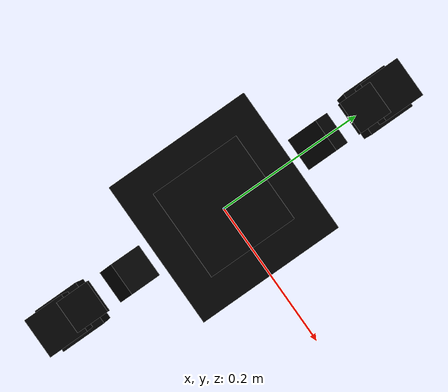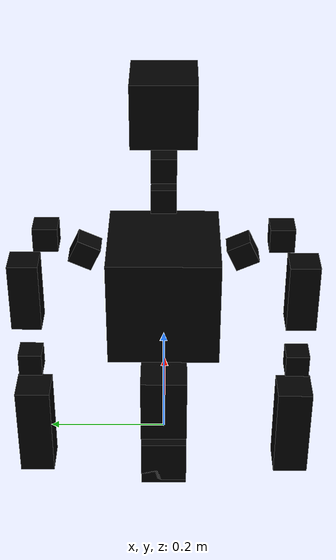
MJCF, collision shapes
<mujoco model="GR1T1">
    <compiler angle="radian" autolimits="true"/>
    <default>
    <motor ctrlrange="-1 1" ctrllimited="true"/>
        <default class="body">
            <geom type="box" condim="1" friction="1.0 0.05 0.05" solimp=".9 .99 .003" solref=".015 1"/>
            <joint type="hinge" armature=".007" limited="true" solimplimit="0 .99 .01"/>
            <site size="10" group="3"/>
        </default>
  </default>
  <asset>
    <texture type="skybox" builtin="gradient" rgb1=".3 .5 .7" rgb2="0 0 0" width="32" height="512"/>
    <texture name="body" type="cube" builtin="flat" mark="cross" width="128" height="128" rgb1="0.8 0.6 0.4" rgb2="0.8 0.6 0.4" markrgb="1 1 1" random="0.01"/>
    <material name="body" texture="body" texuniform="true" rgba="0.8 0.6 .4 1"/>
    <texture name="grid" type="2d" builtin="checker" width="512" height="512" rgb1=".1 .2 .3" rgb2=".2 .3 .4"/>
    <material name="grid" texture="grid" texrepeat="1 1" texuniform="true" reflectance="0.02"/>

    <!-- Define mesh model files -->
    <mesh name="base" file="./meshes/base.STL"/>
    <mesh name="l_thigh_roll" file="./meshes/l_thigh_roll.STL"/>
    <mesh name="l_thigh_yaw" file="./meshes/l_thigh_yaw.STL"/>
    <mesh name="l_thigh_pitch" file="./meshes/l_thigh_pitch.STL"/>
    <mesh name="l_shank_pitch" file="./meshes/l_shank_pitch.STL"/>
    <mesh name="l_foot_pitch" file="./meshes/l_foot_pitch.STL"/>
    <mesh name="l_foot_roll" file="./meshes/l_foot_roll.STL"/>
    <mesh name="r_thigh_roll" file="./meshes/r_thigh_roll.STL"/>
    <mesh name="r_thigh_yaw" file="./meshes/r_thigh_yaw.STL"/>
    <mesh name="r_thigh_pitch" file="./meshes/r_thigh_pitch.STL"/>
    <mesh name="r_shank_pitch" file="./meshes/r_shank_pitch.STL"/>
    <mesh name="r_foot_pitch" file="./meshes/r_foot_pitch.STL"/>
    <mesh name="r_foot_roll" file="./meshes/r_foot_roll.STL"/>
    <mesh name="waist_yaw" file="./meshes/waist_yaw.STL"/>
    <mesh name="waist_pitch" file="./meshes/waist_pitch.STL"/>
    <mesh name="waist_roll" file="./meshes/waist_roll.STL"/>
    <mesh name="head_yaw" file="./meshes/head_yaw.STL"/>
    <mesh name="head_roll" file="./meshes/head_roll.STL"/>
    <mesh name="head_pitch" file="./meshes/head_pitch.STL"/>
    <mesh name="l_upper_arm_pitch" file="./meshes/l_upper_arm_pitch.STL"/>
    <mesh name="l_upper_arm_roll" file="./meshes/l_upper_arm_roll.STL"/>
    <mesh name="l_upper_arm_yaw" file="./meshes/l_upper_arm_yaw.STL"/>
    <mesh name="l_lower_arm_pitch" file="./meshes/l_lower_arm_pitch.STL"/>
    <mesh name="l_hand_yaw" file="./meshes/l_hand_yaw.STL"/>
    <mesh name="l_hand_roll" file="./meshes/l_hand_roll.STL"/>
    <mesh name="l_hand_pitch" file="./meshes/l_hand_pitch.STL"/>
    <mesh name="r_upper_arm_pitch" file="./meshes/r_upper_arm_pitch.STL"/>
    <mesh name="r_upper_arm_roll" file="./meshes/r_upper_arm_roll.STL"/>
    <mesh name="r_upper_arm_yaw" file="./meshes/r_upper_arm_yaw.STL"/>
    <mesh name="r_lower_arm_pitch" file="./meshes/r_lower_arm_pitch.STL"/>
    <mesh name="r_hand_yaw" file="./meshes/r_hand_yaw.STL"/>
    <mesh name="r_hand_roll" file="./meshes/r_hand_roll.STL"/>
    <mesh name="r_hand_pitch" file="./meshes/r_hand_pitch.STL"/>
    <!-- End of mesh model files -->
  </asset>
  <worldbody>
    <!-- Base -->

    <body name="base">
        <inertial pos="-0.0508888 0.000109183 -0.0455794" quat="0.706855 0.707166 0.0123661 -0.0109307" mass="6.45117" diaginertia="0.0149302 0.0127972 0.00640923"/>
        <!-- Base mesh -->
        <geom type="mesh" contype="0" conaffinity="0" group="1" density="0" rgba="0 0 0 1" mesh="base"/>
        <geom size="0.04 0.04 0.04" pos="0 0 -0.06" type="box" rgba="0 0 0 1"/>
        <!-- Torso center of mass -->
        <body name="torso_link">
            <body name="base_com" />
        </body>

        <!-- Torso -->

        <!-- Waist yaw -->
        <body name="waist_yaw" pos="0 0 0.0065">
            <site name="waist" pos="0 0 0" size="0.06 0.06 0.06" rgba="1 0 0 0" type="sphere" group="1"/>
            <inertial pos="-0.010388 -0.00169636 0.0224709" quat="8.03475e-05 0.752953 -6.91813e-06 0.658075" mass="0.37886" diaginertia="0.000387148 0.000354992 0.000193448"/>
            <joint name="waist_yaw" pos="0 0 0" damping="50.4164" stiffness="453.15" axis="-1.221e-05 -6.8349e-05 1" range="-1.05 1.05"/>

            <geom type="mesh" contype="0" conaffinity="0" group="1" density="0" rgba="0 0 0 1" mesh="waist_yaw"/>
            <geom size="0.04 0.04 0.04" pos="0 0 -0.06" quat="0.707388 0.706825 0 0" type="box" rgba="0 0 0 1"/>

            <!-- Waist pitch -->
            <body name="waist_pitch" pos="0 0 0.055">
                <inertial pos="0.00229173 -0.00229364 0.0425378" quat="0.998452 -0.0194486 0.0162447 0.0495079" mass="4.40328" diaginertia="0.00487449 0.00487146 0.00355351"/>
                <joint name="waist_pitch" pos="0 0 0" damping="50.4164" stiffness="453.15" axis="0 1 -6.8349e-05" range="-0.52 1.22"/>

                <geom type="mesh" contype="0" conaffinity="0" group="1" density="0" rgba="0 0 0 1" mesh="waist_pitch"/>
                <geom size="0.04 0.04 0.06" type="box" rgba="0 0 0 1"/>

                <!-- Waist roll -->
                <body name="waist_roll" pos="0 0 0.085">
                    <site name="chest" pos="0 0 0.2" size="0.06 0.06 0.06" rgba="1 0 0 0" type="sphere" group="1"/>
                    <inertial pos="-0.00982804 -1.2954e-05 0.160653" quat="0.999997 1.84368e-05 -0.00260593 -4.00255e-05" mass="7.34393" diaginertia="0.0305266 0.0217567 0.0136783"/>
                    <joint name="waist_roll" pos="0 0 0" damping="50.4164" stiffness="453.15" axis="1 0 1.221e-05" range="-0.7 0.7"/>

                    <geom type="mesh" contype="0" conaffinity="0" group="1" density="0" rgba="0 0 0 1" mesh="waist_roll"/>
                    <geom size="0.09 0.09 0.09" pos="0 0 0.15" type="box" rgba="0 0 0 1"/>

                    <!-- Head yaw -->
                    <body name="head_yaw" pos="0 -2.3548e-05 0.34453">
                        <site name="neck" pos="0 0 0" size="0.03 0.03 0.03" rgba="1 0 0 0" type="sphere" group="1"/>
                        <inertial pos="0.000255273 -1.43143e-05 0.0571737" quat="0.698659 0.111628 0.112302 0.697713" mass="0.168425" diaginertia="0.00013241 0.000126266 6.86988e-05"/>
                        <joint name="head_yaw" pos="0 0 0" damping="1000" axis="-1.221e-05 -6.8349e-05 1" range="-1.5707963267948966 1.5707963267948966"/>

                        <geom type="mesh" contype="0" conaffinity="0" group="1" density="0" rgba="0 0 0 1" mesh="head_yaw"/>
                        <geom size="0.02 0.02 0.02" pos="0 0 -0.03" type="box" rgba="0 0 0 1"/>

                        <!-- Head roll -->
                        <body name="head_roll" pos="0 0 0.1225">
                            <inertial pos="-0.000539717 0.00299723 -0.00194711" quat="0.498775 0.509039 0.50481 0.487104" mass="0.0189574" diaginertia="5.66154e-06 3.71917e-06 3.07146e-06"/>
                            <joint name="head_roll" pos="0 0 0" damping="1000" axis="1 0 1.221e-05" range="-0.2617993877991494 0.2617993877991494"/>

                            <geom type="mesh" contype="0" conaffinity="0" group="1" density="0" rgba="0 0 0 1" mesh="head_roll"/>
                            <geom size="0.02 0.02 0.02" pos="0 0 -0.1" type="box" rgba="0 0 0 1"/>

                            <!-- Head pitch -->
                            <body name="head_pitch">
                                <site name="head" pos="0 0 0" size="0.06 0.06 0.06" rgba="1 0 0 0" type="sphere" group="1"/>
                                <inertial pos="0.0179937 0.000157203 -0.0107884" quat="-0.00317787 0.890883 0.0047882 0.454197" mass="0.315067" diaginertia="0.00129389 0.00105273 0.000852366"/>
                                <joint name="head_pitch" pos="0 0 0" damping="1000" axis="0 1 6.8349e-05" range="-0.2617993877991494 0.2617993877991494"/>

                                <geom type="mesh" contype="0" conaffinity="0" group="1" density="0" rgba="0 0 0 1" mesh="head_pitch"/>
                                <geom size="0.05 0.05 0.05" type="box" rgba="0 0 0 1"/>

                            </body>
                            <!-- End of Head pitch -->
                        </body>
                        <!-- End of Head roll -->
                    </body>
                    <!-- End of Head yaw -->

                <!-- Right arm -->

                <!-- r upper arm pitch -->
                <body name="r_upper_arm_pitch" pos="0 -0.12664 0.21725" quat="0.976303 -0.216409 0 0">
                    <site name="r_shoulder_site" pos="0 0 0" size="0.03 0.03 0.03" rgba="1 0 0 0" type="sphere" group="1"/>
                    <inertial pos="0.00515735 -0.0587916 0.000122944" quat="0.999675 -0.0254775 -0.000125407 -0.000494276" mass="0.777391" diaginertia="0.00054641 0.000340601 0.00031934"/>
                    <joint name="r_shoulder_pitch" pos="0 0 0" axis="0 1 0" range="-2.6179938779914944 1.0471975511965976"/>

                    <geom type="mesh" contype="0" conaffinity="0" group="1" density="0" rgba="0 0 0 1" mesh="r_upper_arm_pitch"/>
                    <geom size="0.02 0.02 0.02" type="box" rgba="0 0 0 1"/>

                    <!-- r upper arm roll -->
                    <body name="r_upper_arm_roll" pos="0 -0.067 0" quat="0.976303 0.216409 0 0">
                        <inertial pos="0.0260059 -0.0238264 -0.0272109" quat="0.906733 -0.298529 0.228698 0.190821" mass="0.0840989" diaginertia="9.66585e-05 8.99068e-05 2.54689e-05"/>
                        <joint name="r_shoulder_roll" pos="0 0 0" axis="-1 0 1.221e-05" range="0.0 2.6179938779914944"/>

                        <geom type="mesh" contype="0" conaffinity="0" group="1" density="0" rgba="0 0 0 1" mesh="r_upper_arm_roll"/>
                        <geom size="0.02 0.02 0.02" type="box" rgba="0 0 0 1"/>

                        <!-- r upper arm yaw -->
                        <body name="r_upper_arm_yaw" pos="0 -0.039996 -0.057473">
                            <site name="r_collar_site" pos="0 0 0" size="0.03 0.03 0.03" rgba="1 0 0 0" type="sphere" group="1"/>
                            <inertial pos="0.00017083 -0.00124148 -0.100981" quat="0.712176 -0.02561 0.0250075 0.701088" mass="0.78993" diaginertia="0.000481112 0.000420147 0.000315576"/>
                            <joint name="r_shoulder_yaw" pos="0 0 0" axis="1.221e-05 6.8349e-05 1" range="-1.5707963267948966 1.5707963267948966"/>

                            <geom type="mesh" contype="0" conaffinity="0" group="1" density="0" rgba="0 0 0 1" mesh="r_upper_arm_yaw"/>
                            <geom size="0.025 0.025 0.06" pos="0 0 -0.05" type="box" rgba="0 0 0 1"/>

                            <!-- r lower arm pitch -->
                            <body name="r_lower_arm_pitch" pos="0 1.28859e-05 -0.18853">
                                <site name="r_elbow_site" pos="0 0 0" size="0.03 0.03 0.03" rgba="1 0 0 0" type="sphere" group="1"/>
                                <inertial pos="2.54538e-07 -0.0196908 -0.0210929" quat="0.675237 0.209883 -0.209892 0.67524" mass="0.0553958" diaginertia="2.92256e-05 2.63267e-05 1.3293e-05"/>
                                <joint name="r_elbow_pitch" pos="0 0 0" axis="0 1 -6.835e-05" range="-1.5707963267948966 0.0"/>

                                <geom type="mesh" contype="0" conaffinity="0" group="1" density="0" rgba="0 0 0 1" mesh="r_lower_arm_pitch"/>
                                <geom size="0.02 0.02 0.02" type="box" rgba="0 0 0 1"/>

                                <!-- r hand yaw -->
                                <body name="r_hand_yaw" pos="0 0 -0.0405">
                                    <inertial pos="0.000158044 -0.000478822 -0.0559415" quat="0.999772 0.019131 0.00724385 -0.00608553" mass="0.606076" diaginertia="0.000748132 0.000708413 0.000280748"/>
                                    <joint name="r_wrist_yaw" pos="0 0 0" axis="1.221e-05 6.835e-05 1" range="-1.5707963267948966 1.5707963267948966"/>

                                    <geom type="mesh" contype="0" conaffinity="0" group="1" density="0" rgba="0 0 0 1" mesh="r_hand_yaw"/>
                                    <geom size="0.03 0.03 0.085" pos="0 0 -0.1" type="box" rgba="0 0 0 1"/>

                                    <!-- r hand roll -->
                                    <body name="r_hand_roll" pos="0 1.3775e-05 -0.20153">
                                        <inertial pos="1.5545e-08 0.00044846 4.1938e-08" quat="0 0.707105 0 0.707108" mass="0.0054473" diaginertia="3.6036e-07 3.5527e-07 7.344e-08"/>
                                        <joint name="r_wrist_roll" pos="0 0 0" axis="1 0 1.221e-05" range="-0.3665191429188092 0.3665191429188092"/>

                                        <geom type="mesh" contype="0" conaffinity="0" group="1" density="0" rgba="0 0 0 1" mesh="r_hand_roll"/>

                                        <!-- r hand pitch -->
                                        <body name="r_hand_pitch">
                                            <site name="r_wrist_site" pos="0 0 0" size="0.03 0.03 0.03" rgba="1 0 0 0" type="sphere" group="1"/>
                                            <inertial pos="0.0060733 0.0018907 -0.084578" quat="0.647336 -0.27161 -0.257721 0.6639" mass="0.53221" diaginertia="0.000319947 0.000196296 0.000182477"/>
                                            <joint name="r_wrist_pitch" pos="0 0 0" axis="0 1 -6.835e-05" range="-0.3665191429188092 0.3665191429188092"/>

                                            <!-- right eef -->
                                            <body name="right_eef" pos="0 0 0" quat="-0.707107 0 0 0.707107">
                                                <body name="right_mount" quat="0 0 1 0"/>
                                                <body name="right_hand_eef" pos="0 0 0"/>
                                            </body>
                                            <!-- End of right eef -->
                                        </body>
                                        <!-- End of r hand pitch -->
                                    </body>
                                    <!-- End of r hand roll -->
                                </body>
                                <!-- End of r hand yaw -->
                            </body>
                            <!-- End of r lower arm pitch -->
                        </body>
                        <!-- End of r upper arm yaw -->
                    </body>
                    <!-- End of r upper arm roll -->
                </body>
                <!-- End of r upper arm pitch -->
                <!-- End of Right arm -->

                <!-- Left arm -->
                <!-- l upper arm pitch -->
                <body name="l_upper_arm_pitch" pos="0 0.12661 0.21727" quat="0.976289 0.216473 0 0">
                    <site name="l_shoulder_site" pos="0 0 0" size="0.03 0.03 0.03" rgba="1 0 0 0" type="sphere" group="1"/>
                    <inertial pos="0.00515733 0.0588337 0.000122944" quat="0.999793 0.0203364 -0.000117253 0.0011083" mass="0.777394" diaginertia="0.000546411 0.000340581 0.000319359"/>
                    <joint name="l_shoulder_pitch" pos="0 0 0" axis="0 -1 0" range="-1.0471975511965976 2.6179938779914944"/>
                    <geom type="mesh" contype="0" conaffinity="0" group="1" density="0" rgba="0 0 0 1" mesh="l_upper_arm_pitch"/>
                    <geom size="0.02 0.02 0.02" type="box" rgba="0 0 0 1"/>

                    <!-- l upper arm roll -->
                    <body name="l_upper_arm_roll" pos="0 0.067 0" quat="0.976289 -0.216473 0 0">
                        <inertial pos="0.0260055 0.0238305 -0.0272078" quat="0.906707 0.298574 0.228734 -0.190834" mass="0.084111" diaginertia="9.66711e-05 8.99184e-05 2.54726e-05"/>
                        <joint name="l_shoulder_roll" pos="0 0 0" axis="-1 0 1.221e-05" range="-2.6179938779914944 0.0"/>
                        <geom type="mesh" contype="0" conaffinity="0" group="1" density="0" rgba="0 0 0 1" mesh="l_upper_arm_roll"/>
                        <geom size="0.02 0.02 0.02" type="box" rgba="0 0 0 1"/>

                        <!-- l upper arm yaw -->
                        <body name="l_upper_arm_yaw" pos="0 0.040004 -0.057502">
                            <site name="l_collar_site" pos="0 0 0" size="0.03 0.03 0.03" rgba="1 0 0 0" type="sphere" group="1"/>
                            <inertial pos="-4.12427e-05 0.00135031 -0.101007" quat="0.706543 0.0248514 -0.0268343 0.706724" mass="0.78993" diaginertia="0.000480863 0.000420363 0.000315608"/>
                            <joint name="l_shoulder_yaw" pos="0 0 0" axis="1.221e-05 6.8349e-05 1" range="-1.5707963267948966 1.5707963267948966"/>
                            <geom type="mesh" contype="0" conaffinity="0" group="1" density="0" rgba="0 0 0 1" mesh="l_upper_arm_yaw"/>
                            <geom size="0.025 0.025 0.06" pos="0 0 -0.05" type="box" rgba="0 0 0 1"/>

                            <!-- l lower arm pitch -->
                            <body name="l_lower_arm_pitch" pos="0 1.28869e-05 -0.188546">
                                <site name="l_elbow_site" pos="0 0 0" size="0.03 0.03 0.03" rgba="1 0 0 0" type="sphere" group="1"/>
                                <inertial pos="2.60519e-07 0.0196937 -0.0210902" quat="0.675254 -0.209845 0.209837 0.675252" mass="0.0553958" diaginertia="2.92256e-05 2.63267e-05 1.3293e-05"/>
                                <joint name="l_elbow_pitch" pos="0 0 0" axis="0 -1 -6.83491e-05" range="0.0 1.5707963267948966"/>
                                <geom type="mesh" contype="0" conaffinity="0" group="1" density="0" rgba="0 0 0 1" mesh="l_lower_arm_pitch"/>
                                <geom size="0.02 0.02 0.02" type="box" rgba="0 0 0 1"/>

                                <!-- l hand yaw -->
                                <body name="l_hand_yaw" pos="0 0 -0.0405043">
                                    <inertial pos="-4.20996e-05 0.000336116 -0.0559829" quat="0.999784 -0.0189715 -0.00676208 0.00509819" mass="0.606076" diaginertia="0.000747266 0.000709257 0.000280769"/>
                                    <joint name="l_wrist_yaw" pos="0 0 0" axis="1.221e-05 6.83491e-05 1" range="-1.5707963267948966 1.5707963267948966"/>
                                    <geom type="mesh" contype="0" conaffinity="0" group="1" density="0" rgba="0 0 0 1" mesh="l_hand_yaw"/>
                                    <geom size="0.03 0.03 0.085" pos="0 0 -0.1" type="box" rgba="0 0 0 1"/>

                                    <!-- l hand roll -->
                                    <body name="l_hand_roll" pos="0 1.3775e-05 -0.20155">
                                        <inertial pos="-1.5483e-08 -0.00044846 -1.9394e-08" quat="0 0.7071 0 0.707114" mass="0.0054473" diaginertia="3.6036e-07 3.5527e-07 7.344e-08"/>
                                        <joint name="l_wrist_roll" pos="0 0 0" axis="-1 0 1.2211e-05" range="-0.3665191429188092 0.3665191429188092"/>
                                        <geom type="mesh" contype="0" conaffinity="0" group="1" density="0" rgba="0 0 0 1" mesh="l_hand_roll"/>

                                        <!-- l hand pitch -->
                                        <body name="l_hand_pitch">
                                            <site name="l_wrist_site" pos="0 0 0" size="0.03 0.03 0.03" rgba="1 0 0 0" type="sphere" group="1"/>
                                            <inertial pos="0.0071289 -0.0026192 -0.078567" quat="0.298548 0.646339 0.631172 0.307795" mass="0.5239" diaginertia="0.000345825 0.000211684 0.000195941"/>
                                            <joint name="l_wrist_pitch" pos="0 0 0" axis="0 1 6.8349e-05" range="-0.3665191429188092 0.3665191429188092"/>

                                            <!-- left eef -->
                                            <body name="left_eef" pos="0 0 0" quat="0.707107 0 0 0.707107">
                                                <body name="left_mount" quat="0 0 1 0"/>
                                                <body name="left_hand_eef" pos="0 0 0"/>
                                            </body>
                                            <!-- End of left eef -->
                                        </body>
                                        <!-- End of l hand pitch -->
                                    </body>
                                    <!-- End of l hand roll -->
                                </body>
                                <!-- End of l hand yaw -->
                            </body>
                            <!-- End of l lower arm pitch -->
                        </body>
                        <!-- End of l upper arm yaw -->
                    </body>
                    <!-- End of l upper arm roll -->
                </body>
                <!-- End of l upper arm pitch -->

                <!-- End of Left arm -->

                </body>
                <!-- End of Waist roll -->
            </body>
            <!-- End of Waist pitch -->
        </body>
        <!-- End of Waist yaw -->
        <!-- End of Torso -->

    </body>
    <!-- End of Base -->
  </worldbody>
  <actuator>

    <motor ctrllimited="true" ctrlrange="-20000 20000" joint="waist_yaw" name="waist_yaw"/>
    <motor ctrllimited="true" ctrlrange="-20000 20000" joint="waist_pitch" name="waist_pitch"/>
    <motor ctrllimited="true" ctrlrange="-20000 20000" joint="waist_roll" name="waist_roll"/>
    <motor ctrllimited="true" ctrlrange="-20000 20000" joint="head_yaw" name="head_yaw"/>
    <motor ctrllimited="true" ctrlrange="-20000 20000" joint="head_pitch" name="head_pitch"/>
    <motor ctrllimited="true" ctrlrange="-20000 20000" joint="head_roll" name="head_roll"/>

    <!-- Right arm motors -->
    <motor ctrllimited="true" ctrlrange="-20000 20000" joint="r_shoulder_pitch" name="r_shoulder_pitch"/>
    <motor ctrllimited="true" ctrlrange="-20000 20000" joint="r_shoulder_roll" name="r_shoulder_roll"/>
    <motor ctrllimited="true" ctrlrange="-20000 20000" joint="r_shoulder_yaw" name="r_shoulder_yaw"/>
    <motor ctrllimited="true" ctrlrange="-20000 20000" joint="r_elbow_pitch" name="r_elbow_pitch"/>
    <motor ctrllimited="true" ctrlrange="-20000 20000" joint="r_wrist_yaw" name="r_wrist_yaw"/>
    <motor ctrllimited="true" ctrlrange="-20000 20000" joint="r_wrist_roll" name="r_wrist_roll"/>
    <motor ctrllimited="true" ctrlrange="-20000 20000" joint="r_wrist_pitch" name="r_wrist_pitch"/>
    <!-- End of right arm motors -->

    <!-- Left arm motors -->
    <motor ctrllimited="true" ctrlrange="-20000 20000" joint="l_shoulder_pitch" name="l_shoulder_pitch"/>
    <motor ctrllimited="true" ctrlrange="-20000 20000" joint="l_shoulder_roll" name="l_shoulder_roll"/>
    <motor ctrllimited="true" ctrlrange="-20000 20000" joint="l_shoulder_yaw" name="l_shoulder_yaw"/>
    <motor ctrllimited="true" ctrlrange="-20000 20000" joint="l_elbow_pitch" name="l_elbow_pitch"/>
    <motor ctrllimited="true" ctrlrange="-20000 20000" joint="l_wrist_yaw" name="l_wrist_yaw"/>
    <motor ctrllimited="true" ctrlrange="-20000 20000" joint="l_wrist_roll" name="l_wrist_roll"/>
    <motor ctrllimited="true" ctrlrange="-20000 20000" joint="l_wrist_pitch" name="l_wrist_pitch"/>
    <!-- End of left arm motors -->

  </actuator>
</mujoco>
